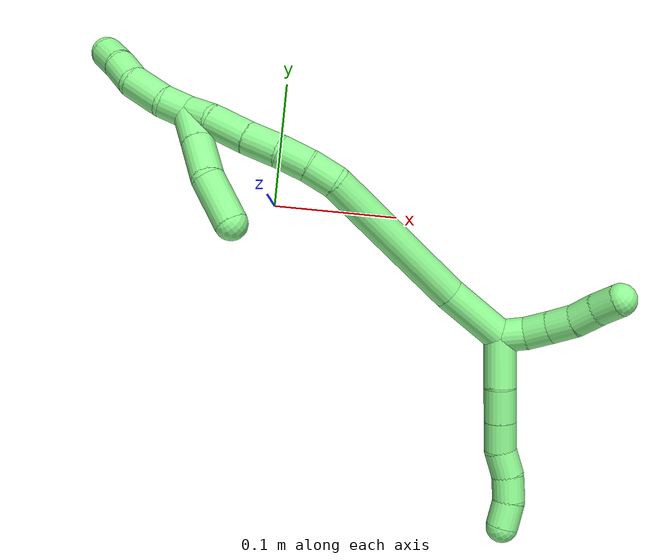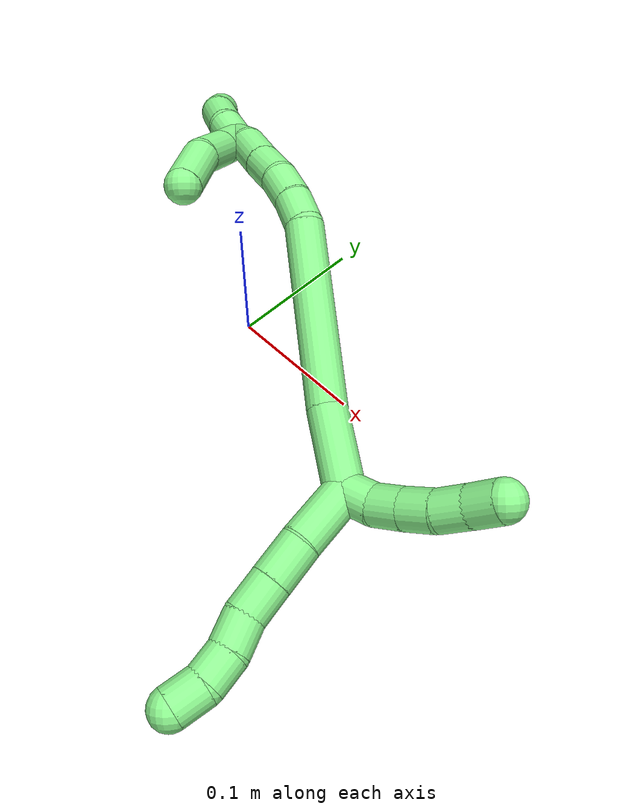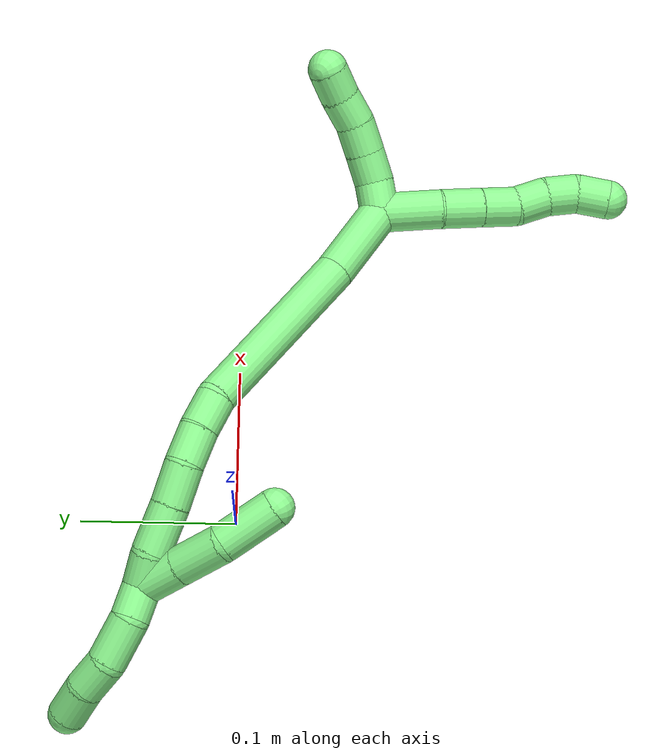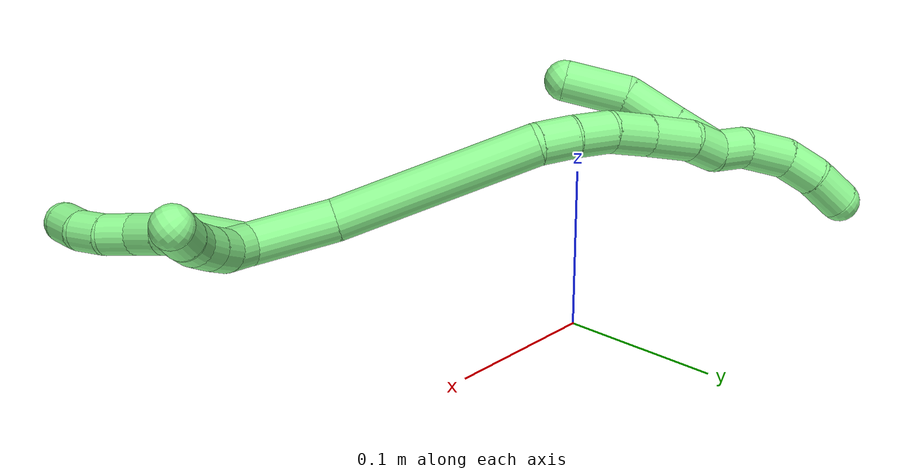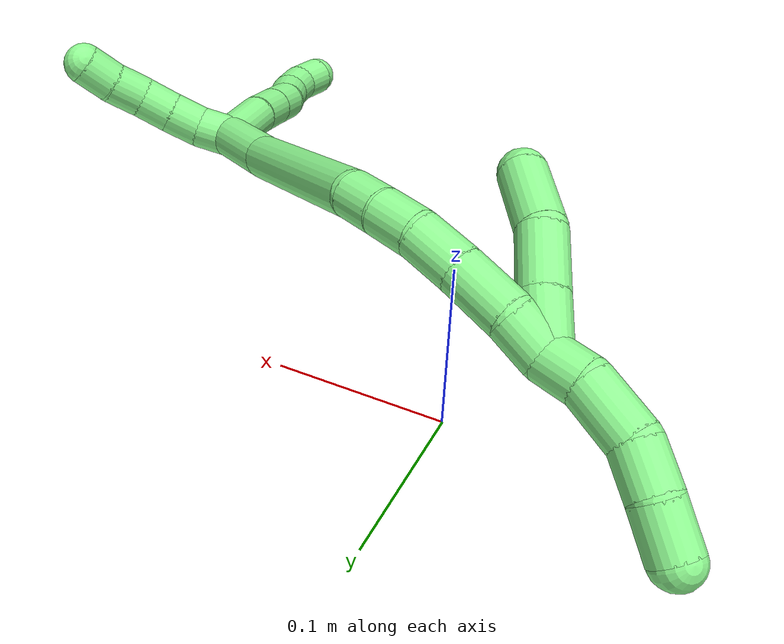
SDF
<sdf version="1.7">
 <world name="default">
  <model name="13">
   <static>0</static>
   <link name="13">
    <collision name="collision-cylinder-e_1_2_8">
     <pose>0.001399 -0.015176 -0.012362 2.25436 0.071376 0.149983</pose>
     <geometry><cylinder><radius>0.0125</radius><length>0.039248</length></cylinder></geometry>
     <surface>
      <friction><ode><mu>1.16</mu><mu2>1.16</mu2><slip1>0</slip1><slip2>0</slip2></ode></friction>
      <contact><ode><kp>1e+06</kp><kd>1</kd><max_vel>0</max_vel><min_depth>0.001</min_depth></ode></contact>
     </surface>
    </collision>
    <visual name="visual-cylinder-e_1_2_8">
     <pose>0.001399 -0.015176 -0.012362 2.25436 0.071376 0.149983</pose>
     <geometry><cylinder><radius>0.0125</radius><length>0.039248</length></cylinder></geometry>
     <material><ambient>0.564706 0.984314 0.572549 1</ambient></material>
    </visual>
    <collision name="collision-cylinder-e_2_8_9">
     <pose>0.002704 -0.039644 -0.03396 2.35315 -0.007213 -0.017338</pose>
     <geometry><cylinder><radius>0.0125</radius><length>0.026203</length></cylinder></geometry>
     <surface>
      <friction><ode><mu>1.16</mu><mu2>1.16</mu2><slip1>0</slip1><slip2>0</slip2></ode></friction>
      <contact><ode><kp>1e+06</kp><kd>1</kd><max_vel>0</max_vel><min_depth>0.001</min_depth></ode></contact>
     </surface>
    </collision>
    <visual name="visual-cylinder-e_2_8_9">
     <pose>0.002704 -0.039644 -0.03396 2.35315 -0.007213 -0.017338</pose>
     <geometry><cylinder><radius>0.0125</radius><length>0.026203</length></cylinder></geometry>
     <material><ambient>0.564706 0.984314 0.572549 1</ambient></material>
    </visual>
    <collision name="collision-cylinder-e_3_9_10">
     <pose>0.002375 -0.057014 -0.051428 2.3657 -0.020396 -0.0499</pose>
     <geometry><cylinder><radius>0.0125</radius><length>0.023072</length></cylinder></geometry>
     <surface>
      <friction><ode><mu>1.16</mu><mu2>1.16</mu2><slip1>0</slip1><slip2>0</slip2></ode></friction>
      <contact><ode><kp>1e+06</kp><kd>1</kd><max_vel>0</max_vel><min_depth>0.001</min_depth></ode></contact>
     </surface>
    </collision>
    <visual name="visual-cylinder-e_3_9_10">
     <pose>0.002375 -0.057014 -0.051428 2.3657 -0.020396 -0.0499</pose>
     <geometry><cylinder><radius>0.0125</radius><length>0.023072</length></cylinder></geometry>
     <material><ambient>0.564706 0.984314 0.572549 1</ambient></material>
    </visual>
    <collision name="collision-cylinder-e_4_10_11">
     <pose>0.004377 -0.071158 -0.067851 2.50408 0.216157 0.635301</pose>
     <geometry><cylinder><radius>0.0125</radius><length>0.020869</length></cylinder></geometry>
     <surface>
      <friction><ode><mu>1.16</mu><mu2>1.16</mu2><slip1>0</slip1><slip2>0</slip2></ode></friction>
      <contact><ode><kp>1e+06</kp><kd>1</kd><max_vel>0</max_vel><min_depth>0.001</min_depth></ode></contact>
     </surface>
    </collision>
    <visual name="visual-cylinder-e_4_10_11">
     <pose>0.004377 -0.071158 -0.067851 2.50408 0.216157 0.635301</pose>
     <geometry><cylinder><radius>0.0125</radius><length>0.020869</length></cylinder></geometry>
     <material><ambient>0.564706 0.984314 0.572549 1</ambient></material>
    </visual>
    <collision name="collision-cylinder-e_5_11_12">
     <pose>0.007591 -0.084765 -0.082637 2.28946 0.097048 0.21318</pose>
     <geometry><cylinder><radius>0.0125</radius><length>0.020133</length></cylinder></geometry>
     <surface>
      <friction><ode><mu>1.16</mu><mu2>1.16</mu2><slip1>0</slip1><slip2>0</slip2></ode></friction>
      <contact><ode><kp>1e+06</kp><kd>1</kd><max_vel>0</max_vel><min_depth>0.001</min_depth></ode></contact>
     </surface>
    </collision>
    <visual name="visual-cylinder-e_5_11_12">
     <pose>0.007591 -0.084765 -0.082637 2.28946 0.097048 0.21318</pose>
     <geometry><cylinder><radius>0.0125</radius><length>0.020133</length></cylinder></geometry>
     <material><ambient>0.564706 0.984314 0.572549 1</ambient></material>
    </visual>
    <collision name="collision-cylinder-e_6_12_6">
     <pose>0.007476 -0.101331 -0.093942 2.05164 -0.106699 -0.175723</pose>
     <geometry><cylinder><radius>0.0125</radius><length>0.020475</length></cylinder></geometry>
     <surface>
      <friction><ode><mu>1.16</mu><mu2>1.16</mu2><slip1>0</slip1><slip2>0</slip2></ode></friction>
      <contact><ode><kp>1e+06</kp><kd>1</kd><max_vel>0</max_vel><min_depth>0.001</min_depth></ode></contact>
     </surface>
    </collision>
    <visual name="visual-cylinder-e_6_12_6">
     <pose>0.007476 -0.101331 -0.093942 2.05164 -0.106699 -0.175723</pose>
     <geometry><cylinder><radius>0.0125</radius><length>0.020475</length></cylinder></geometry>
     <material><ambient>0.564706 0.984314 0.572549 1</ambient></material>
    </visual>
    <collision name="collision-cylinder-e_1_2_13">
     <pose>0.008099 0.004835 -0.003322 -2.17281 0.943974 -1.54043</pose>
     <geometry><cylinder><radius>0.0125</radius><length>0.02</length></cylinder></geometry>
     <surface>
      <friction><ode><mu>1.16</mu><mu2>1.16</mu2><slip1>0</slip1><slip2>0</slip2></ode></friction>
      <contact><ode><kp>1e+06</kp><kd>1</kd><max_vel>0</max_vel><min_depth>0.001</min_depth></ode></contact>
     </surface>
    </collision>
    <visual name="visual-cylinder-e_1_2_13">
     <pose>0.008099 0.004835 -0.003322 -2.17281 0.943974 -1.54043</pose>
     <geometry><cylinder><radius>0.0125</radius><length>0.02</length></cylinder></geometry>
     <material><ambient>0.564706 0.984314 0.572549 1</ambient></material>
    </visual>
    <collision name="collision-cylinder-e_2_13_14">
     <pose>0.025108 0.014193 -0.007028 -1.6555 1.09954 -1.1765</pose>
     <geometry><cylinder><radius>0.0125</radius><length>0.02</length></cylinder></geometry>
     <surface>
      <friction><ode><mu>1.16</mu><mu2>1.16</mu2><slip1>0</slip1><slip2>0</slip2></ode></friction>
      <contact><ode><kp>1e+06</kp><kd>1</kd><max_vel>0</max_vel><min_depth>0.001</min_depth></ode></contact>
     </surface>
    </collision>
    <visual name="visual-cylinder-e_2_13_14">
     <pose>0.025108 0.014193 -0.007028 -1.6555 1.09954 -1.1765</pose>
     <geometry><cylinder><radius>0.0125</radius><length>0.02</length></cylinder></geometry>
     <material><ambient>0.564706 0.984314 0.572549 1</ambient></material>
    </visual>
    <collision name="collision-cylinder-e_3_14_15">
     <pose>0.043019 0.02307 -0.007263 -1.53656 1.12005 -1.08946</pose>
     <geometry><cylinder><radius>0.0125</radius><length>0.02</length></cylinder></geometry>
     <surface>
      <friction><ode><mu>1.16</mu><mu2>1.16</mu2><slip1>0</slip1><slip2>0</slip2></ode></friction>
      <contact><ode><kp>1e+06</kp><kd>1</kd><max_vel>0</max_vel><min_depth>0.001</min_depth></ode></contact>
     </surface>
    </collision>
    <visual name="visual-cylinder-e_3_14_15">
     <pose>0.043019 0.02307 -0.007263 -1.53656 1.12005 -1.08946</pose>
     <geometry><cylinder><radius>0.0125</radius><length>0.02</length></cylinder></geometry>
     <material><ambient>0.564706 0.984314 0.572549 1</ambient></material>
    </visual>
    <collision name="collision-cylinder-e_4_15_16">
     <pose>0.060411 0.032519 -0.005206 -1.2126 0.995621 -0.720782</pose>
     <geometry><cylinder><radius>0.0125</radius><length>0.02</length></cylinder></geometry>
     <surface>
      <friction><ode><mu>1.16</mu><mu2>1.16</mu2><slip1>0</slip1><slip2>0</slip2></ode></friction>
      <contact><ode><kp>1e+06</kp><kd>1</kd><max_vel>0</max_vel><min_depth>0.001</min_depth></ode></contact>
     </surface>
    </collision>
    <visual name="visual-cylinder-e_4_15_16">
     <pose>0.060411 0.032519 -0.005206 -1.2126 0.995621 -0.720782</pose>
     <geometry><cylinder><radius>0.0125</radius><length>0.02</length></cylinder></geometry>
     <material><ambient>0.564706 0.984314 0.572549 1</ambient></material>
    </visual>
    <collision name="collision-cylinder-e_5_16_5">
     <pose>0.077748 0.041485 -0.001065 -1.04737 1.10738 -0.685763</pose>
     <geometry><cylinder><radius>0.0125</radius><length>0.02</length></cylinder></geometry>
     <surface>
      <friction><ode><mu>1.16</mu><mu2>1.16</mu2><slip1>0</slip1><slip2>0</slip2></ode></friction>
      <contact><ode><kp>1e+06</kp><kd>1</kd><max_vel>0</max_vel><min_depth>0.001</min_depth></ode></contact>
     </surface>
    </collision>
    <visual name="visual-cylinder-e_5_16_5">
     <pose>0.077748 0.041485 -0.001065 -1.04737 1.10738 -0.685763</pose>
     <geometry><cylinder><radius>0.0125</radius><length>0.02</length></cylinder></geometry>
     <material><ambient>0.564706 0.984314 0.572549 1</ambient></material>
    </visual>
    <collision name="collision-cylinder-e_1_2_17">
     <pose>-0.012641 0.002143 0.02225 -0.096008 -0.514677 0.025285</pose>
     <geometry><cylinder><radius>0.0125</radius><length>0.051359</length></cylinder></geometry>
     <surface>
      <friction><ode><mu>1.16</mu><mu2>1.16</mu2><slip1>0</slip1><slip2>0</slip2></ode></friction>
      <contact><ode><kp>1e+06</kp><kd>1</kd><max_vel>0</max_vel><min_depth>0.001</min_depth></ode></contact>
     </surface>
    </collision>
    <visual name="visual-cylinder-e_1_2_17">
     <pose>-0.012641 0.002143 0.02225 -0.096008 -0.514677 0.025285</pose>
     <geometry><cylinder><radius>0.0125</radius><length>0.051359</length></cylinder></geometry>
     <material><ambient>0.564706 0.984314 0.572549 1</ambient></material>
    </visual>
    <collision name="collision-cylinder-e_2_17_18">
     <pose>-0.047493 0.010326 0.100923 -0.106647 -0.373079 0.020146</pose>
     <geometry><cylinder><radius>0.0125</radius><length>0.121876</length></cylinder></geometry>
     <surface>
      <friction><ode><mu>1.16</mu><mu2>1.16</mu2><slip1>0</slip1><slip2>0</slip2></ode></friction>
      <contact><ode><kp>1e+06</kp><kd>1</kd><max_vel>0</max_vel><min_depth>0.001</min_depth></ode></contact>
     </surface>
    </collision>
    <visual name="visual-cylinder-e_2_17_18">
     <pose>-0.047493 0.010326 0.100923 -0.106647 -0.373079 0.020146</pose>
     <geometry><cylinder><radius>0.0125</radius><length>0.121876</length></cylinder></geometry>
     <material><ambient>0.564706 0.984314 0.572549 1</ambient></material>
    </visual>
    <collision name="collision-cylinder-e_3_18_19">
     <pose>-0.076841 0.016409 0.166098 -0.004938 -0.684156 0.001758</pose>
     <geometry><cylinder><radius>0.0125</radius><length>0.022585</length></cylinder></geometry>
     <surface>
      <friction><ode><mu>1.16</mu><mu2>1.16</mu2><slip1>0</slip1><slip2>0</slip2></ode></friction>
      <contact><ode><kp>1e+06</kp><kd>1</kd><max_vel>0</max_vel><min_depth>0.001</min_depth></ode></contact>
     </surface>
    </collision>
    <visual name="visual-cylinder-e_3_18_19">
     <pose>-0.076841 0.016409 0.166098 -0.004938 -0.684156 0.001758</pose>
     <geometry><cylinder><radius>0.0125</radius><length>0.022585</length></cylinder></geometry>
     <material><ambient>0.564706 0.984314 0.572549 1</ambient></material>
    </visual>
    <collision name="collision-cylinder-e_4_19_20">
     <pose>-0.092538 0.015902 0.182976 0.067604 -0.810199 -0.028999</pose>
     <geometry><cylinder><radius>0.0125</radius><length>0.023632</length></cylinder></geometry>
     <surface>
      <friction><ode><mu>1.16</mu><mu2>1.16</mu2><slip1>0</slip1><slip2>0</slip2></ode></friction>
      <contact><ode><kp>1e+06</kp><kd>1</kd><max_vel>0</max_vel><min_depth>0.001</min_depth></ode></contact>
     </surface>
    </collision>
    <visual name="visual-cylinder-e_4_19_20">
     <pose>-0.092538 0.015902 0.182976 0.067604 -0.810199 -0.028999</pose>
     <geometry><cylinder><radius>0.0125</radius><length>0.023632</length></cylinder></geometry>
     <material><ambient>0.564706 0.984314 0.572549 1</ambient></material>
    </visual>
    <collision name="collision-cylinder-e_5_20_21">
     <pose>-0.112589 0.015226 0.198068 0.018106 -1.02581 -0.010197</pose>
     <geometry><cylinder><radius>0.0125</radius><length>0.026876</length></cylinder></geometry>
     <surface>
      <friction><ode><mu>1.16</mu><mu2>1.16</mu2><slip1>0</slip1><slip2>0</slip2></ode></friction>
      <contact><ode><kp>1e+06</kp><kd>1</kd><max_vel>0</max_vel><min_depth>0.001</min_depth></ode></contact>
     </surface>
    </collision>
    <visual name="visual-cylinder-e_5_20_21">
     <pose>-0.112589 0.015226 0.198068 0.018106 -1.02581 -0.010197</pose>
     <geometry><cylinder><radius>0.0125</radius><length>0.026876</length></cylinder></geometry>
     <material><ambient>0.564706 0.984314 0.572549 1</ambient></material>
    </visual>
    <collision name="collision-cylinder-e_6_21_22">
     <pose>-0.137459 0.015799 0.213388 -0.083467 -1.01102 0.046216</pose>
     <geometry><cylinder><radius>0.0125</radius><length>0.031578</length></cylinder></geometry>
     <surface>
      <friction><ode><mu>1.16</mu><mu2>1.16</mu2><slip1>0</slip1><slip2>0</slip2></ode></friction>
      <contact><ode><kp>1e+06</kp><kd>1</kd><max_vel>0</max_vel><min_depth>0.001</min_depth></ode></contact>
     </surface>
    </collision>
    <visual name="visual-cylinder-e_6_21_22">
     <pose>-0.137459 0.015799 0.213388 -0.083467 -1.01102 0.046216</pose>
     <geometry><cylinder><radius>0.0125</radius><length>0.031578</length></cylinder></geometry>
     <material><ambient>0.564706 0.984314 0.572549 1</ambient></material>
    </visual>
    <collision name="collision-cylinder-e_7_22_1">
     <pose>-0.161379 0.016939 0.22502 -0.133775 -1.26678 0.098301</pose>
     <geometry><cylinder><radius>0.0125</radius><length>0.022094</length></cylinder></geometry>
     <surface>
      <friction><ode><mu>1.16</mu><mu2>1.16</mu2><slip1>0</slip1><slip2>0</slip2></ode></friction>
      <contact><ode><kp>1e+06</kp><kd>1</kd><max_vel>0</max_vel><min_depth>0.001</min_depth></ode></contact>
     </surface>
    </collision>
    <visual name="visual-cylinder-e_7_22_1">
     <pose>-0.161379 0.016939 0.22502 -0.133775 -1.26678 0.098301</pose>
     <geometry><cylinder><radius>0.0125</radius><length>0.022094</length></cylinder></geometry>
     <material><ambient>0.564706 0.984314 0.572549 1</ambient></material>
    </visual>
    <collision name="collision-cylinder-e_1_1_23">
     <pose>-0.162866 0.007114 0.223608 1.99931 0.676022 1.00109</pose>
     <geometry><cylinder><radius>0.0125</radius><length>0.028936</length></cylinder></geometry>
     <surface>
      <friction><ode><mu>1.16</mu><mu2>1.16</mu2><slip1>0</slip1><slip2>0</slip2></ode></friction>
      <contact><ode><kp>1e+06</kp><kd>1</kd><max_vel>0</max_vel><min_depth>0.001</min_depth></ode></contact>
     </surface>
    </collision>
    <visual name="visual-cylinder-e_1_1_23">
     <pose>-0.162866 0.007114 0.223608 1.99931 0.676022 1.00109</pose>
     <geometry><cylinder><radius>0.0125</radius><length>0.028936</length></cylinder></geometry>
     <material><ambient>0.564706 0.984314 0.572549 1</ambient></material>
    </visual>
    <collision name="collision-cylinder-e_2_23_24">
     <pose>-0.143513 -0.014772 0.213926 1.97654 0.683465 0.990134</pose>
     <geometry><cylinder><radius>0.0125</radius><length>0.032623</length></cylinder></geometry>
     <surface>
      <friction><ode><mu>1.16</mu><mu2>1.16</mu2><slip1>0</slip1><slip2>0</slip2></ode></friction>
      <contact><ode><kp>1e+06</kp><kd>1</kd><max_vel>0</max_vel><min_depth>0.001</min_depth></ode></contact>
     </surface>
    </collision>
    <visual name="visual-cylinder-e_2_23_24">
     <pose>-0.143513 -0.014772 0.213926 1.97654 0.683465 0.990134</pose>
     <geometry><cylinder><radius>0.0125</radius><length>0.032623</length></cylinder></geometry>
     <material><ambient>0.564706 0.984314 0.572549 1</ambient></material>
    </visual>
    <collision name="collision-cylinder-e_3_24_4">
     <pose>-0.122039 -0.037099 0.197534 2.38762 0.620388 1.36114</pose>
     <geometry><cylinder><radius>0.0125</radius><length>0.038441</length></cylinder></geometry>
     <surface>
      <friction><ode><mu>1.16</mu><mu2>1.16</mu2><slip1>0</slip1><slip2>0</slip2></ode></friction>
      <contact><ode><kp>1e+06</kp><kd>1</kd><max_vel>0</max_vel><min_depth>0.001</min_depth></ode></contact>
     </surface>
    </collision>
    <visual name="visual-cylinder-e_3_24_4">
     <pose>-0.122039 -0.037099 0.197534 2.38762 0.620388 1.36114</pose>
     <geometry><cylinder><radius>0.0125</radius><length>0.038441</length></cylinder></geometry>
     <material><ambient>0.564706 0.984314 0.572549 1</ambient></material>
    </visual>
    <collision name="collision-cylinder-e_1_1_25">
     <pose>-0.179933 0.016646 0.235283 0.104685 -0.851105 -0.047483</pose>
     <geometry><cylinder><radius>0.0125</radius><length>0.021313</length></cylinder></geometry>
     <surface>
      <friction><ode><mu>1.16</mu><mu2>1.16</mu2><slip1>0</slip1><slip2>0</slip2></ode></friction>
      <contact><ode><kp>1e+06</kp><kd>1</kd><max_vel>0</max_vel><min_depth>0.001</min_depth></ode></contact>
     </surface>
    </collision>
    <visual name="visual-cylinder-e_1_1_25">
     <pose>-0.179933 0.016646 0.235283 0.104685 -0.851105 -0.047483</pose>
     <geometry><cylinder><radius>0.0125</radius><length>0.021313</length></cylinder></geometry>
     <material><ambient>0.564706 0.984314 0.572549 1</ambient></material>
    </visual>
    <collision name="collision-cylinder-e_2_25_26">
     <pose>-0.201026 0.018645 0.249791 -0.348486 -1.0217 0.196683</pose>
     <geometry><cylinder><radius>0.0125</radius><length>0.030667</length></cylinder></geometry>
     <surface>
      <friction><ode><mu>1.16</mu><mu2>1.16</mu2><slip1>0</slip1><slip2>0</slip2></ode></friction>
      <contact><ode><kp>1e+06</kp><kd>1</kd><max_vel>0</max_vel><min_depth>0.001</min_depth></ode></contact>
     </surface>
    </collision>
    <visual name="visual-cylinder-e_2_25_26">
     <pose>-0.201026 0.018645 0.249791 -0.348486 -1.0217 0.196683</pose>
     <geometry><cylinder><radius>0.0125</radius><length>0.030667</length></cylinder></geometry>
     <material><ambient>0.564706 0.984314 0.572549 1</ambient></material>
    </visual>
    <collision name="collision-cylinder-e_3_26_27">
     <pose>-0.223927 0.026662 0.260591 -1.01553 -1.00634 0.594402</pose>
     <geometry><cylinder><radius>0.0125</radius><length>0.023249</length></cylinder></geometry>
     <surface>
      <friction><ode><mu>1.16</mu><mu2>1.16</mu2><slip1>0</slip1><slip2>0</slip2></ode></friction>
      <contact><ode><kp>1e+06</kp><kd>1</kd><max_vel>0</max_vel><min_depth>0.001</min_depth></ode></contact>
     </surface>
    </collision>
    <visual name="visual-cylinder-e_3_26_27">
     <pose>-0.223927 0.026662 0.260591 -1.01553 -1.00634 0.594402</pose>
     <geometry><cylinder><radius>0.0125</radius><length>0.023249</length></cylinder></geometry>
     <material><ambient>0.564706 0.984314 0.572549 1</ambient></material>
    </visual>
    <collision name="collision-cylinder-e_4_27_3">
     <pose>-0.244993 0.036983 0.265129 -1.32579 -1.13822 0.926433</pose>
     <geometry><cylinder><radius>0.0125</radius><length>0.024771</length></cylinder></geometry>
     <surface>
      <friction><ode><mu>1.16</mu><mu2>1.16</mu2><slip1>0</slip1><slip2>0</slip2></ode></friction>
      <contact><ode><kp>1e+06</kp><kd>1</kd><max_vel>0</max_vel><min_depth>0.001</min_depth></ode></contact>
     </surface>
    </collision>
    <visual name="visual-cylinder-e_4_27_3">
     <pose>-0.244993 0.036983 0.265129 -1.32579 -1.13822 0.926433</pose>
     <geometry><cylinder><radius>0.0125</radius><length>0.024771</length></cylinder></geometry>
     <material><ambient>0.564706 0.984314 0.572549 1</ambient></material>
    </visual>
    <collision name="collision-sphere-3">
     <pose>-0.256237 0.04202 0.266388 0 -0 0</pose>
     <geometry><sphere><radius>0.0125</radius></sphere></geometry>
     <surface>
      <friction><ode><mu>1.16</mu><mu2>1.16</mu2><slip1>0</slip1><slip2>0</slip2></ode></friction>
      <contact><ode><kp>1e+06</kp><kd>1</kd><max_vel>0</max_vel><min_depth>0.001</min_depth></ode></contact>
     </surface>
    </collision>
    <visual name="visual-sphere-3">
     <pose>-0.256237 0.04202 0.266388 0 -0 0</pose>
     <geometry><sphere><radius>0.0125</radius></sphere></geometry>
     <material><ambient>0.564706 0.984314 0.572549 1</ambient></material>
    </visual>
    <collision name="collision-sphere-27">
     <pose>-0.233748 0.031946 0.263869 0 -0 0</pose>
     <geometry><sphere><radius>0.0125</radius></sphere></geometry>
     <surface>
      <friction><ode><mu>1.16</mu><mu2>1.16</mu2><slip1>0</slip1><slip2>0</slip2></ode></friction>
      <contact><ode><kp>1e+06</kp><kd>1</kd><max_vel>0</max_vel><min_depth>0.001</min_depth></ode></contact>
     </surface>
    </collision>
    <visual name="visual-sphere-27">
     <pose>-0.233748 0.031946 0.263869 0 -0 0</pose>
     <geometry><sphere><radius>0.0125</radius></sphere></geometry>
     <material><ambient>0.564706 0.984314 0.572549 1</ambient></material>
    </visual>
    <collision name="collision-sphere-26">
     <pose>-0.214106 0.021377 0.257313 0 -0 0</pose>
     <geometry><sphere><radius>0.0125</radius></sphere></geometry>
     <surface>
      <friction><ode><mu>1.16</mu><mu2>1.16</mu2><slip1>0</slip1><slip2>0</slip2></ode></friction>
      <contact><ode><kp>1e+06</kp><kd>1</kd><max_vel>0</max_vel><min_depth>0.001</min_depth></ode></contact>
     </surface>
    </collision>
    <visual name="visual-sphere-26">
     <pose>-0.214106 0.021377 0.257313 0 -0 0</pose>
     <geometry><sphere><radius>0.0125</radius></sphere></geometry>
     <material><ambient>0.564706 0.984314 0.572549 1</ambient></material>
    </visual>
    <collision name="collision-sphere-25">
     <pose>-0.187947 0.015912 0.242269 0 -0 0</pose>
     <geometry><sphere><radius>0.0125</radius></sphere></geometry>
     <surface>
      <friction><ode><mu>1.16</mu><mu2>1.16</mu2><slip1>0</slip1><slip2>0</slip2></ode></friction>
      <contact><ode><kp>1e+06</kp><kd>1</kd><max_vel>0</max_vel><min_depth>0.001</min_depth></ode></contact>
     </surface>
    </collision>
    <visual name="visual-sphere-25">
     <pose>-0.187947 0.015912 0.242269 0 -0 0</pose>
     <geometry><sphere><radius>0.0125</radius></sphere></geometry>
     <material><ambient>0.564706 0.984314 0.572549 1</ambient></material>
    </visual>
    <collision name="collision-sphere-4">
     <pose>-0.110865 -0.047804 0.186134 0 -0 0</pose>
     <geometry><sphere><radius>0.0125</radius></sphere></geometry>
     <surface>
      <friction><ode><mu>1.16</mu><mu2>1.16</mu2><slip1>0</slip1><slip2>0</slip2></ode></friction>
      <contact><ode><kp>1e+06</kp><kd>1</kd><max_vel>0</max_vel><min_depth>0.001</min_depth></ode></contact>
     </surface>
    </collision>
    <visual name="visual-sphere-4">
     <pose>-0.110865 -0.047804 0.186134 0 -0 0</pose>
     <geometry><sphere><radius>0.0125</radius></sphere></geometry>
     <material><ambient>0.564706 0.984314 0.572549 1</ambient></material>
    </visual>
    <collision name="collision-sphere-24">
     <pose>-0.133213 -0.026393 0.208934 0 -0 0</pose>
     <geometry><sphere><radius>0.0125</radius></sphere></geometry>
     <surface>
      <friction><ode><mu>1.16</mu><mu2>1.16</mu2><slip1>0</slip1><slip2>0</slip2></ode></friction>
      <contact><ode><kp>1e+06</kp><kd>1</kd><max_vel>0</max_vel><min_depth>0.001</min_depth></ode></contact>
     </surface>
    </collision>
    <visual name="visual-sphere-24">
     <pose>-0.133213 -0.026393 0.208934 0 -0 0</pose>
     <geometry><sphere><radius>0.0125</radius></sphere></geometry>
     <material><ambient>0.564706 0.984314 0.572549 1</ambient></material>
    </visual>
    <collision name="collision-sphere-23">
     <pose>-0.153814 -0.003152 0.218918 0 -0 0</pose>
     <geometry><sphere><radius>0.0125</radius></sphere></geometry>
     <surface>
      <friction><ode><mu>1.16</mu><mu2>1.16</mu2><slip1>0</slip1><slip2>0</slip2></ode></friction>
      <contact><ode><kp>1e+06</kp><kd>1</kd><max_vel>0</max_vel><min_depth>0.001</min_depth></ode></contact>
     </surface>
    </collision>
    <visual name="visual-sphere-23">
     <pose>-0.153814 -0.003152 0.218918 0 -0 0</pose>
     <geometry><sphere><radius>0.0125</radius></sphere></geometry>
     <material><ambient>0.564706 0.984314 0.572549 1</ambient></material>
    </visual>
    <collision name="collision-sphere-1">
     <pose>-0.171919 0.01738 0.228297 0 -0 0</pose>
     <geometry><sphere><radius>0.0125</radius></sphere></geometry>
     <surface>
      <friction><ode><mu>1.16</mu><mu2>1.16</mu2><slip1>0</slip1><slip2>0</slip2></ode></friction>
      <contact><ode><kp>1e+06</kp><kd>1</kd><max_vel>0</max_vel><min_depth>0.001</min_depth></ode></contact>
     </surface>
    </collision>
    <visual name="visual-sphere-1">
     <pose>-0.171919 0.01738 0.228297 0 -0 0</pose>
     <geometry><sphere><radius>0.0125</radius></sphere></geometry>
     <material><ambient>0.564706 0.984314 0.572549 1</ambient></material>
    </visual>
    <collision name="collision-sphere-22">
     <pose>-0.150838 0.016498 0.221743 0 -0 0</pose>
     <geometry><sphere><radius>0.0125</radius></sphere></geometry>
     <surface>
      <friction><ode><mu>1.16</mu><mu2>1.16</mu2><slip1>0</slip1><slip2>0</slip2></ode></friction>
      <contact><ode><kp>1e+06</kp><kd>1</kd><max_vel>0</max_vel><min_depth>0.001</min_depth></ode></contact>
     </surface>
    </collision>
    <visual name="visual-sphere-22">
     <pose>-0.150838 0.016498 0.221743 0 -0 0</pose>
     <geometry><sphere><radius>0.0125</radius></sphere></geometry>
     <material><ambient>0.564706 0.984314 0.572549 1</ambient></material>
    </visual>
    <collision name="collision-sphere-21">
     <pose>-0.12408 0.0151 0.205033 0 -0 0</pose>
     <geometry><sphere><radius>0.0125</radius></sphere></geometry>
     <surface>
      <friction><ode><mu>1.16</mu><mu2>1.16</mu2><slip1>0</slip1><slip2>0</slip2></ode></friction>
      <contact><ode><kp>1e+06</kp><kd>1</kd><max_vel>0</max_vel><min_depth>0.001</min_depth></ode></contact>
     </surface>
    </collision>
    <visual name="visual-sphere-21">
     <pose>-0.12408 0.0151 0.205033 0 -0 0</pose>
     <geometry><sphere><radius>0.0125</radius></sphere></geometry>
     <material><ambient>0.564706 0.984314 0.572549 1</ambient></material>
    </visual>
    <collision name="collision-sphere-12">
     <pose>0.008566 -0.092306 -0.089233 0 -0 0</pose>
     <geometry><sphere><radius>0.0125</radius></sphere></geometry>
     <surface>
      <friction><ode><mu>1.16</mu><mu2>1.16</mu2><slip1>0</slip1><slip2>0</slip2></ode></friction>
      <contact><ode><kp>1e+06</kp><kd>1</kd><max_vel>0</max_vel><min_depth>0.001</min_depth></ode></contact>
     </surface>
    </collision>
    <visual name="visual-sphere-12">
     <pose>0.008566 -0.092306 -0.089233 0 -0 0</pose>
     <geometry><sphere><radius>0.0125</radius></sphere></geometry>
     <material><ambient>0.564706 0.984314 0.572549 1</ambient></material>
    </visual>
    <collision name="collision-sphere-11">
     <pose>0.006615 -0.077224 -0.07604 0 -0 0</pose>
     <geometry><sphere><radius>0.0125</radius></sphere></geometry>
     <surface>
      <friction><ode><mu>1.16</mu><mu2>1.16</mu2><slip1>0</slip1><slip2>0</slip2></ode></friction>
      <contact><ode><kp>1e+06</kp><kd>1</kd><max_vel>0</max_vel><min_depth>0.001</min_depth></ode></contact>
     </surface>
    </collision>
    <visual name="visual-sphere-11">
     <pose>0.006615 -0.077224 -0.07604 0 -0 0</pose>
     <geometry><sphere><radius>0.0125</radius></sphere></geometry>
     <material><ambient>0.564706 0.984314 0.572549 1</ambient></material>
    </visual>
    <collision name="collision-sphere-10">
     <pose>0.002139 -0.065092 -0.059661 0 -0 0</pose>
     <geometry><sphere><radius>0.0125</radius></sphere></geometry>
     <surface>
      <friction><ode><mu>1.16</mu><mu2>1.16</mu2><slip1>0</slip1><slip2>0</slip2></ode></friction>
      <contact><ode><kp>1e+06</kp><kd>1</kd><max_vel>0</max_vel><min_depth>0.001</min_depth></ode></contact>
     </surface>
    </collision>
    <visual name="visual-sphere-10">
     <pose>0.002139 -0.065092 -0.059661 0 -0 0</pose>
     <geometry><sphere><radius>0.0125</radius></sphere></geometry>
     <material><ambient>0.564706 0.984314 0.572549 1</ambient></material>
    </visual>
    <collision name="collision-sphere-9">
     <pose>0.00261 -0.048936 -0.043195 0 -0 0</pose>
     <geometry><sphere><radius>0.0125</radius></sphere></geometry>
     <surface>
      <friction><ode><mu>1.16</mu><mu2>1.16</mu2><slip1>0</slip1><slip2>0</slip2></ode></friction>
      <contact><ode><kp>1e+06</kp><kd>1</kd><max_vel>0</max_vel><min_depth>0.001</min_depth></ode></contact>
     </surface>
    </collision>
    <visual name="visual-sphere-9">
     <pose>0.00261 -0.048936 -0.043195 0 -0 0</pose>
     <geometry><sphere><radius>0.0125</radius></sphere></geometry>
     <material><ambient>0.564706 0.984314 0.572549 1</ambient></material>
    </visual>
    <collision name="collision-sphere-2">
     <geometry><sphere><radius>0.0125</radius></sphere></geometry>
     <surface>
      <friction><ode><mu>1.16</mu><mu2>1.16</mu2><slip1>0</slip1><slip2>0</slip2></ode></friction>
      <contact><ode><kp>1e+06</kp><kd>1</kd><max_vel>0</max_vel><min_depth>0.001</min_depth></ode></contact>
     </surface>
    </collision>
    <visual name="visual-sphere-2">
     <geometry><sphere><radius>0.0125</radius></sphere></geometry>
     <material><ambient>0.564706 0.984314 0.572549 1</ambient></material>
    </visual>
    <collision name="collision-sphere-19">
     <pose>-0.083978 0.016453 0.174849 0 -0 0</pose>
     <geometry><sphere><radius>0.0125</radius></sphere></geometry>
     <surface>
      <friction><ode><mu>1.16</mu><mu2>1.16</mu2><slip1>0</slip1><slip2>0</slip2></ode></friction>
      <contact><ode><kp>1e+06</kp><kd>1</kd><max_vel>0</max_vel><min_depth>0.001</min_depth></ode></contact>
     </surface>
    </collision>
    <visual name="visual-sphere-19">
     <pose>-0.083978 0.016453 0.174849 0 -0 0</pose>
     <geometry><sphere><radius>0.0125</radius></sphere></geometry>
     <material><ambient>0.564706 0.984314 0.572549 1</ambient></material>
    </visual>
    <collision name="collision-sphere-8">
     <pose>0.002799 -0.030352 -0.024724 0 -0 0</pose>
     <geometry><sphere><radius>0.0125</radius></sphere></geometry>
     <surface>
      <friction><ode><mu>1.16</mu><mu2>1.16</mu2><slip1>0</slip1><slip2>0</slip2></ode></friction>
      <contact><ode><kp>1e+06</kp><kd>1</kd><max_vel>0</max_vel><min_depth>0.001</min_depth></ode></contact>
     </surface>
    </collision>
    <visual name="visual-sphere-8">
     <pose>0.002799 -0.030352 -0.024724 0 -0 0</pose>
     <geometry><sphere><radius>0.0125</radius></sphere></geometry>
     <material><ambient>0.564706 0.984314 0.572549 1</ambient></material>
    </visual>
    <collision name="collision-sphere-6">
     <pose>0.006386 -0.110357 -0.09865 0 -0 0</pose>
     <geometry><sphere><radius>0.0125</radius></sphere></geometry>
     <surface>
      <friction><ode><mu>1.16</mu><mu2>1.16</mu2><slip1>0</slip1><slip2>0</slip2></ode></friction>
      <contact><ode><kp>1e+06</kp><kd>1</kd><max_vel>0</max_vel><min_depth>0.001</min_depth></ode></contact>
     </surface>
    </collision>
    <visual name="visual-sphere-6">
     <pose>0.006386 -0.110357 -0.09865 0 -0 0</pose>
     <geometry><sphere><radius>0.0125</radius></sphere></geometry>
     <material><ambient>0.564706 0.984314 0.572549 1</ambient></material>
    </visual>
    <collision name="collision-sphere-13">
     <pose>0.016198 0.009669 -0.006644 0 -0 0</pose>
     <geometry><sphere><radius>0.0125</radius></sphere></geometry>
     <surface>
      <friction><ode><mu>1.16</mu><mu2>1.16</mu2><slip1>0</slip1><slip2>0</slip2></ode></friction>
      <contact><ode><kp>1e+06</kp><kd>1</kd><max_vel>0</max_vel><min_depth>0.001</min_depth></ode></contact>
     </surface>
    </collision>
    <visual name="visual-sphere-13">
     <pose>0.016198 0.009669 -0.006644 0 -0 0</pose>
     <geometry><sphere><radius>0.0125</radius></sphere></geometry>
     <material><ambient>0.564706 0.984314 0.572549 1</ambient></material>
    </visual>
    <collision name="collision-sphere-14">
     <pose>0.034018 0.018717 -0.007412 0 -0 0</pose>
     <geometry><sphere><radius>0.0125</radius></sphere></geometry>
     <surface>
      <friction><ode><mu>1.16</mu><mu2>1.16</mu2><slip1>0</slip1><slip2>0</slip2></ode></friction>
      <contact><ode><kp>1e+06</kp><kd>1</kd><max_vel>0</max_vel><min_depth>0.001</min_depth></ode></contact>
     </surface>
    </collision>
    <visual name="visual-sphere-14">
     <pose>0.034018 0.018717 -0.007412 0 -0 0</pose>
     <geometry><sphere><radius>0.0125</radius></sphere></geometry>
     <material><ambient>0.564706 0.984314 0.572549 1</ambient></material>
    </visual>
    <collision name="collision-sphere-15">
     <pose>0.05202 0.027424 -0.007114 0 -0 0</pose>
     <geometry><sphere><radius>0.0125</radius></sphere></geometry>
     <surface>
      <friction><ode><mu>1.16</mu><mu2>1.16</mu2><slip1>0</slip1><slip2>0</slip2></ode></friction>
      <contact><ode><kp>1e+06</kp><kd>1</kd><max_vel>0</max_vel><min_depth>0.001</min_depth></ode></contact>
     </surface>
    </collision>
    <visual name="visual-sphere-15">
     <pose>0.05202 0.027424 -0.007114 0 -0 0</pose>
     <geometry><sphere><radius>0.0125</radius></sphere></geometry>
     <material><ambient>0.564706 0.984314 0.572549 1</ambient></material>
    </visual>
    <collision name="collision-sphere-16">
     <pose>0.068802 0.037613 -0.003299 0 -0 0</pose>
     <geometry><sphere><radius>0.0125</radius></sphere></geometry>
     <surface>
      <friction><ode><mu>1.16</mu><mu2>1.16</mu2><slip1>0</slip1><slip2>0</slip2></ode></friction>
      <contact><ode><kp>1e+06</kp><kd>1</kd><max_vel>0</max_vel><min_depth>0.001</min_depth></ode></contact>
     </surface>
    </collision>
    <visual name="visual-sphere-16">
     <pose>0.068802 0.037613 -0.003299 0 -0 0</pose>
     <geometry><sphere><radius>0.0125</radius></sphere></geometry>
     <material><ambient>0.564706 0.984314 0.572549 1</ambient></material>
    </visual>
    <collision name="collision-sphere-5">
     <pose>0.086693 0.045356 0.00117 0 -0 0</pose>
     <geometry><sphere><radius>0.0125</radius></sphere></geometry>
     <surface>
      <friction><ode><mu>1.16</mu><mu2>1.16</mu2><slip1>0</slip1><slip2>0</slip2></ode></friction>
      <contact><ode><kp>1e+06</kp><kd>1</kd><max_vel>0</max_vel><min_depth>0.001</min_depth></ode></contact>
     </surface>
    </collision>
    <visual name="visual-sphere-5">
     <pose>0.086693 0.045356 0.00117 0 -0 0</pose>
     <geometry><sphere><radius>0.0125</radius></sphere></geometry>
     <material><ambient>0.564706 0.984314 0.572549 1</ambient></material>
    </visual>
    <collision name="collision-sphere-17">
     <pose>-0.025282 0.004286 0.0445 0 -0 0</pose>
     <geometry><sphere><radius>0.0125</radius></sphere></geometry>
     <surface>
      <friction><ode><mu>1.16</mu><mu2>1.16</mu2><slip1>0</slip1><slip2>0</slip2></ode></friction>
      <contact><ode><kp>1e+06</kp><kd>1</kd><max_vel>0</max_vel><min_depth>0.001</min_depth></ode></contact>
     </surface>
    </collision>
    <visual name="visual-sphere-17">
     <pose>-0.025282 0.004286 0.0445 0 -0 0</pose>
     <geometry><sphere><radius>0.0125</radius></sphere></geometry>
     <material><ambient>0.564706 0.984314 0.572549 1</ambient></material>
    </visual>
    <collision name="collision-sphere-18">
     <pose>-0.069704 0.016366 0.157347 0 -0 0</pose>
     <geometry><sphere><radius>0.0125</radius></sphere></geometry>
     <surface>
      <friction><ode><mu>1.16</mu><mu2>1.16</mu2><slip1>0</slip1><slip2>0</slip2></ode></friction>
      <contact><ode><kp>1e+06</kp><kd>1</kd><max_vel>0</max_vel><min_depth>0.001</min_depth></ode></contact>
     </surface>
    </collision>
    <visual name="visual-sphere-18">
     <pose>-0.069704 0.016366 0.157347 0 -0 0</pose>
     <geometry><sphere><radius>0.0125</radius></sphere></geometry>
     <material><ambient>0.564706 0.984314 0.572549 1</ambient></material>
    </visual>
    <collision name="collision-sphere-20">
     <pose>-0.101097 0.015352 0.191103 0 -0 0</pose>
     <geometry><sphere><radius>0.0125</radius></sphere></geometry>
     <surface>
      <friction><ode><mu>1.16</mu><mu2>1.16</mu2><slip1>0</slip1><slip2>0</slip2></ode></friction>
      <contact><ode><kp>1e+06</kp><kd>1</kd><max_vel>0</max_vel><min_depth>0.001</min_depth></ode></contact>
     </surface>
    </collision>
    <visual name="visual-sphere-20">
     <pose>-0.101097 0.015352 0.191103 0 -0 0</pose>
     <geometry><sphere><radius>0.0125</radius></sphere></geometry>
     <material><ambient>0.564706 0.984314 0.572549 1</ambient></material>
    </visual>
    <inertial>
     <pose>-0.069049 -0.002315 0.10247 0 -0 0</pose>
     <mass>0.75</mass>
     <inertia>
      <ixx>0.000194</ixx>
      <ixy>0</ixy>
      <ixz>0</ixz>
      <iyy>0.000195</iyy>
      <iyz>0</iyz>
      <izz>7.4e-05</izz>
     </inertia>
    </inertial>
   </link>
   <pose>0.184834 -0.087868 0.086679 -0.480825 -0.7601 -0.081255</pose>
  </model>
 </world>
</sdf>
